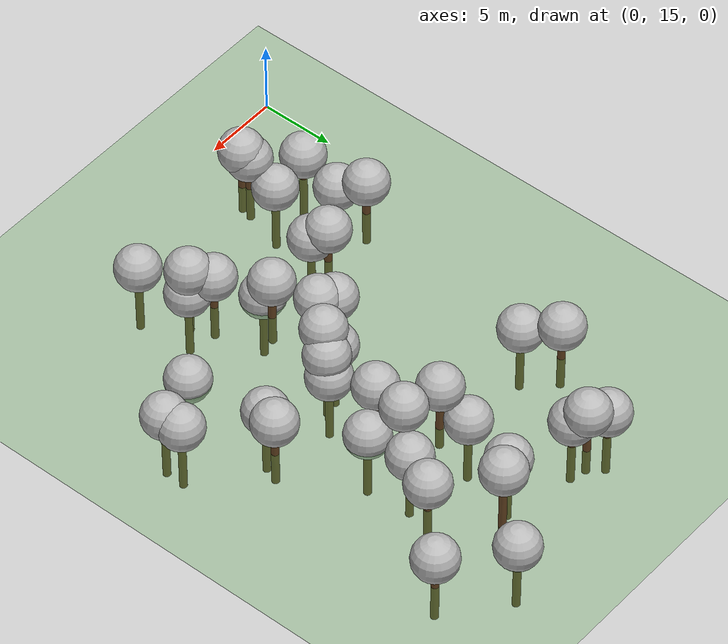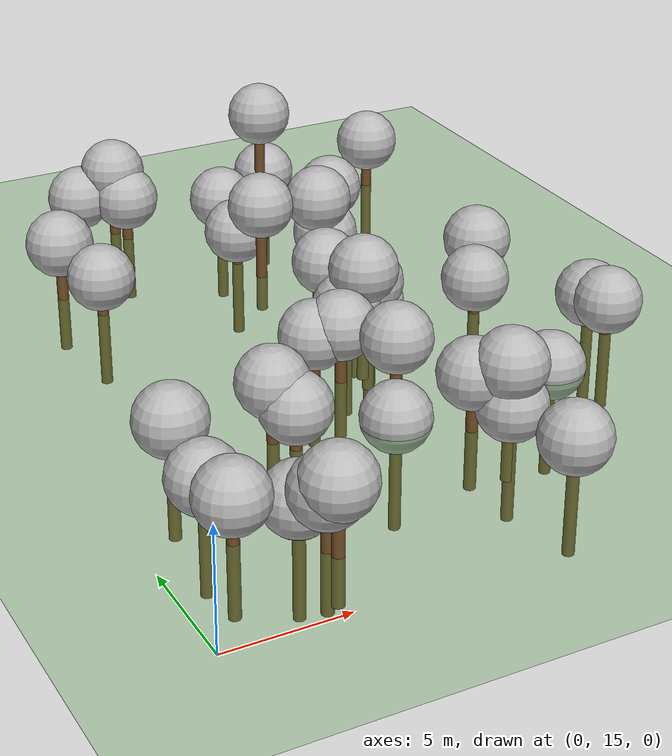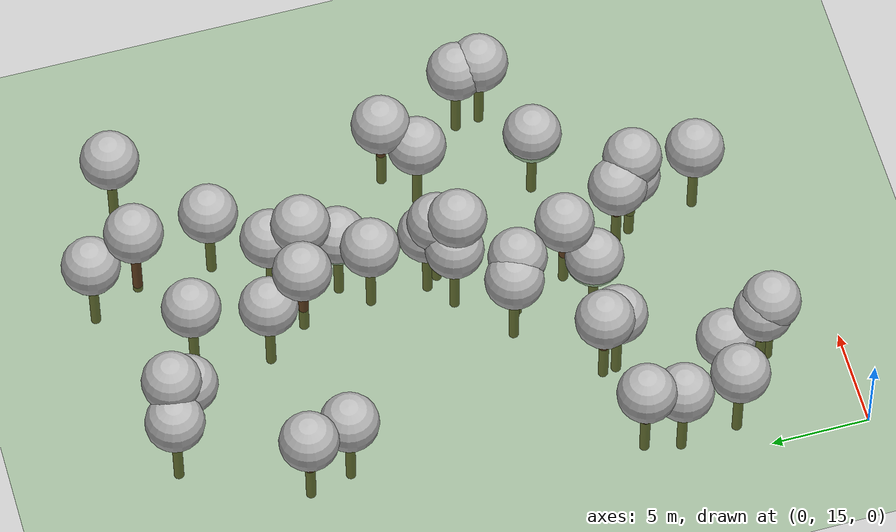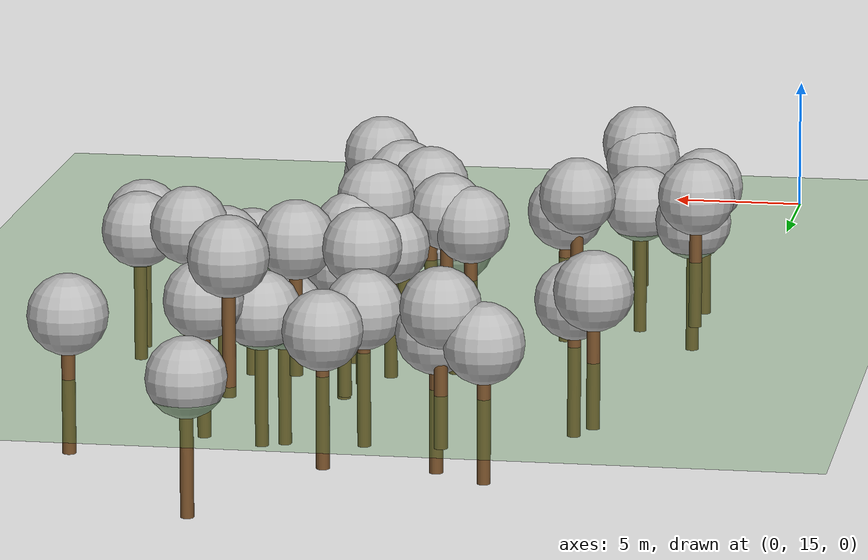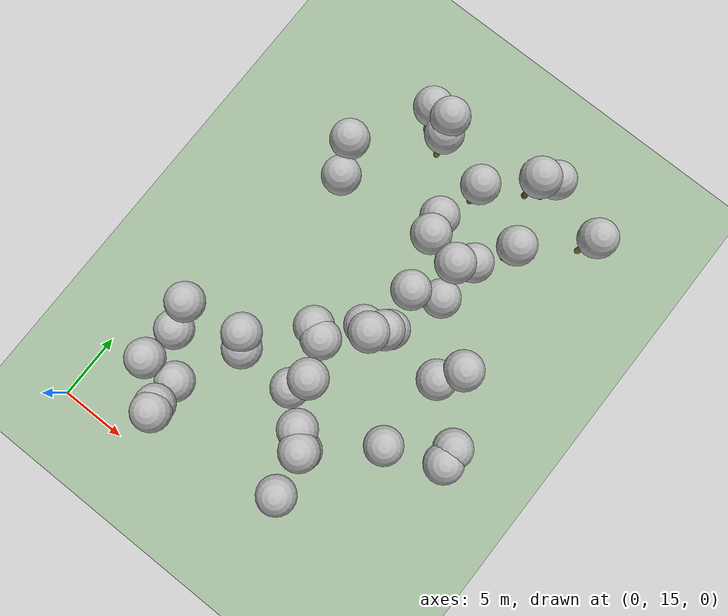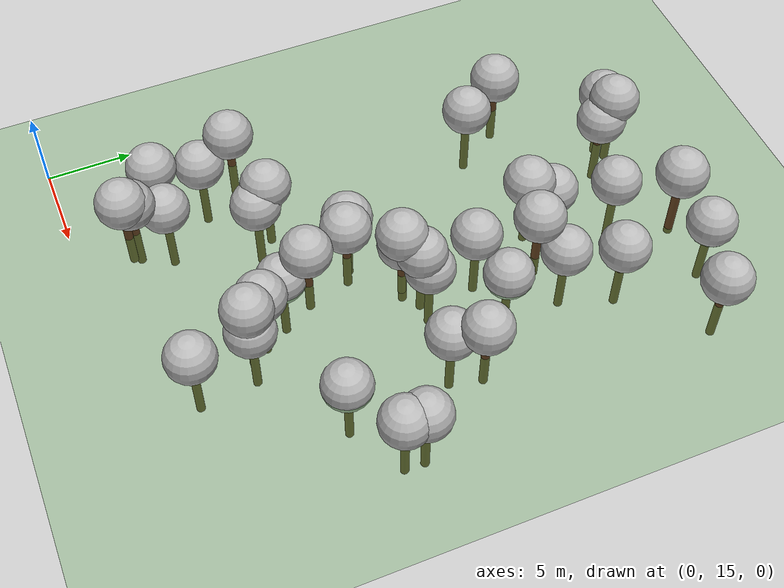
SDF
<sdf version="1.7">
 <world name="default">
  <model name="tree_simple497">
   <static>1</static>
   <link name="link">
    <pose>0 0 0.1 0 -0 0</pose>
    <collision name="collision_trunk">
     <pose>0 0 2 0 -0 0</pose>
     <geometry><cylinder><radius>0.25</radius><length>4</length></cylinder></geometry>
    </collision>
    <collision name="collision_treetop">
     <pose>0 0 5.2 0 -0 0</pose>
     <geometry><sphere><radius>1.5</radius></sphere></geometry>
    </collision>
    <visual name="trunk">
     <pose>0 0 2 0 -0 0</pose>
     <geometry><cylinder><radius>0.25</radius><length>4</length></cylinder></geometry>
     <material>
      <script>
       <uri>model://tree_simple/scripts</uri>
       <uri>model://tree_simple/materials/textures</uri>
       <name>TreeSimple/Trunk</name>
      </script>
     </material>
    </visual>
    <visual name="treetop">
     <pose>0 0 5.2 0 -0 0</pose>
     <geometry><sphere><radius>1.5</radius></sphere></geometry>
     <material>
      <script>
       <uri>model://tree_simple/scripts</uri>
       <uri>model://tree_simple/materials/textures</uri>
       <name>TreeSimple/Treetop</name>
      </script>
     </material>
    </visual>
   </link>
   <pose>16.5731 19.0017 -3.75156 0 -0 0</pose>
  </model>
  <model name="tree_simple465">
   <static>1</static>
   <link name="link">
    <pose>0 0 0.1 0 -0 0</pose>
    <collision name="collision_trunk">
     <pose>0 0 2 0 -0 0</pose>
     <geometry><cylinder><radius>0.25</radius><length>4</length></cylinder></geometry>
    </collision>
    <collision name="collision_treetop">
     <pose>0 0 5.2 0 -0 0</pose>
     <geometry><sphere><radius>1.5</radius></sphere></geometry>
    </collision>
    <visual name="trunk">
     <pose>0 0 2 0 -0 0</pose>
     <geometry><cylinder><radius>0.25</radius><length>4</length></cylinder></geometry>
     <material>
      <script>
       <uri>model://tree_simple/scripts</uri>
       <uri>model://tree_simple/materials/textures</uri>
       <name>TreeSimple/Trunk</name>
      </script>
     </material>
    </visual>
    <visual name="treetop">
     <pose>0 0 5.2 0 -0 0</pose>
     <geometry><sphere><radius>1.5</radius></sphere></geometry>
     <material>
      <script>
       <uri>model://tree_simple/scripts</uri>
       <uri>model://tree_simple/materials/textures</uri>
       <name>TreeSimple/Treetop</name>
      </script>
     </material>
    </visual>
   </link>
   <pose>5.78709 20.6383 -4.22115 0 -0 0</pose>
  </model>
  <model name="tree_simple459">
   <static>1</static>
   <link name="link">
    <pose>0 0 0.1 0 -0 0</pose>
    <collision name="collision_trunk">
     <pose>0 0 2 0 -0 0</pose>
     <geometry><cylinder><radius>0.25</radius><length>4</length></cylinder></geometry>
    </collision>
    <collision name="collision_treetop">
     <pose>0 0 5.2 0 -0 0</pose>
     <geometry><sphere><radius>1.5</radius></sphere></geometry>
    </collision>
    <visual name="trunk">
     <pose>0 0 2 0 -0 0</pose>
     <geometry><cylinder><radius>0.25</radius><length>4</length></cylinder></geometry>
     <material>
      <script>
       <uri>model://tree_simple/scripts</uri>
       <uri>model://tree_simple/materials/textures</uri>
       <name>TreeSimple/Trunk</name>
      </script>
     </material>
    </visual>
    <visual name="treetop">
     <pose>0 0 5.2 0 -0 0</pose>
     <geometry><sphere><radius>1.5</radius></sphere></geometry>
     <material>
      <script>
       <uri>model://tree_simple/scripts</uri>
       <uri>model://tree_simple/materials/textures</uri>
       <name>TreeSimple/Treetop</name>
      </script>
     </material>
    </visual>
   </link>
   <pose>23.3051 47.6025 -2.93132 0 -0 0</pose>
  </model>
  <model name="tree_simple457">
   <static>1</static>
   <link name="link">
    <pose>0 0 0.1 0 -0 0</pose>
    <collision name="collision_trunk">
     <pose>0 0 2 0 -0 0</pose>
     <geometry><cylinder><radius>0.25</radius><length>4</length></cylinder></geometry>
    </collision>
    <collision name="collision_treetop">
     <pose>0 0 5.2 0 -0 0</pose>
     <geometry><sphere><radius>1.5</radius></sphere></geometry>
    </collision>
    <visual name="trunk">
     <pose>0 0 2 0 -0 0</pose>
     <geometry><cylinder><radius>0.25</radius><length>4</length></cylinder></geometry>
     <material>
      <script>
       <uri>model://tree_simple/scripts</uri>
       <uri>model://tree_simple/materials/textures</uri>
       <name>TreeSimple/Trunk</name>
      </script>
     </material>
    </visual>
    <visual name="treetop">
     <pose>0 0 5.2 0 -0 0</pose>
     <geometry><sphere><radius>1.5</radius></sphere></geometry>
     <material>
      <script>
       <uri>model://tree_simple/scripts</uri>
       <uri>model://tree_simple/materials/textures</uri>
       <name>TreeSimple/Treetop</name>
      </script>
     </material>
    </visual>
   </link>
   <pose>13.2866 26.7985 -2.34496 0 -0 0</pose>
  </model>
  <model name="tree_simple452">
   <static>1</static>
   <link name="link">
    <pose>0 0 0.1 0 -0 0</pose>
    <collision name="collision_trunk">
     <pose>0 0 2 0 -0 0</pose>
     <geometry><cylinder><radius>0.25</radius><length>4</length></cylinder></geometry>
    </collision>
    <collision name="collision_treetop">
     <pose>0 0 5.2 0 -0 0</pose>
     <geometry><sphere><radius>1.5</radius></sphere></geometry>
    </collision>
    <visual name="trunk">
     <pose>0 0 2 0 -0 0</pose>
     <geometry><cylinder><radius>0.25</radius><length>4</length></cylinder></geometry>
     <material>
      <script>
       <uri>model://tree_simple/scripts</uri>
       <uri>model://tree_simple/materials/textures</uri>
       <name>TreeSimple/Trunk</name>
      </script>
     </material>
    </visual>
    <visual name="treetop">
     <pose>0 0 5.2 0 -0 0</pose>
     <geometry><sphere><radius>1.5</radius></sphere></geometry>
     <material>
      <script>
       <uri>model://tree_simple/scripts</uri>
       <uri>model://tree_simple/materials/textures</uri>
       <name>TreeSimple/Treetop</name>
      </script>
     </material>
    </visual>
   </link>
   <pose>21.4882 34.0286 -2.62857 0 -0 0</pose>
  </model>
  <model name="tree_simple450">
   <static>1</static>
   <link name="link">
    <pose>0 0 0.1 0 -0 0</pose>
    <collision name="collision_trunk">
     <pose>0 0 2 0 -0 0</pose>
     <geometry><cylinder><radius>0.25</radius><length>4</length></cylinder></geometry>
    </collision>
    <collision name="collision_treetop">
     <pose>0 0 5.2 0 -0 0</pose>
     <geometry><sphere><radius>1.5</radius></sphere></geometry>
    </collision>
    <visual name="trunk">
     <pose>0 0 2 0 -0 0</pose>
     <geometry><cylinder><radius>0.25</radius><length>4</length></cylinder></geometry>
     <material>
      <script>
       <uri>model://tree_simple/scripts</uri>
       <uri>model://tree_simple/materials/textures</uri>
       <name>TreeSimple/Trunk</name>
      </script>
     </material>
    </visual>
    <visual name="treetop">
     <pose>0 0 5.2 0 -0 0</pose>
     <geometry><sphere><radius>1.5</radius></sphere></geometry>
     <material>
      <script>
       <uri>model://tree_simple/scripts</uri>
       <uri>model://tree_simple/materials/textures</uri>
       <name>TreeSimple/Treetop</name>
      </script>
     </material>
    </visual>
   </link>
   <pose>16.0273 22.5149 -3.99483 0 -0 0</pose>
  </model>
  <model name="tree_simple445">
   <static>1</static>
   <link name="link">
    <pose>0 0 0.1 0 -0 0</pose>
    <collision name="collision_trunk">
     <pose>0 0 2 0 -0 0</pose>
     <geometry><cylinder><radius>0.25</radius><length>4</length></cylinder></geometry>
    </collision>
    <collision name="collision_treetop">
     <pose>0 0 5.2 0 -0 0</pose>
     <geometry><sphere><radius>1.5</radius></sphere></geometry>
    </collision>
    <visual name="trunk">
     <pose>0 0 2 0 -0 0</pose>
     <geometry><cylinder><radius>0.25</radius><length>4</length></cylinder></geometry>
     <material>
      <script>
       <uri>model://tree_simple/scripts</uri>
       <uri>model://tree_simple/materials/textures</uri>
       <name>TreeSimple/Trunk</name>
      </script>
     </material>
    </visual>
    <visual name="treetop">
     <pose>0 0 5.2 0 -0 0</pose>
     <geometry><sphere><radius>1.5</radius></sphere></geometry>
     <material>
      <script>
       <uri>model://tree_simple/scripts</uri>
       <uri>model://tree_simple/materials/textures</uri>
       <name>TreeSimple/Treetop</name>
      </script>
     </material>
    </visual>
   </link>
   <pose>17.3331 47.7478 -0.525276 0 -0 0</pose>
  </model>
  <model name="tree_simple443">
   <static>1</static>
   <link name="link">
    <pose>0 0 0.1 0 -0 0</pose>
    <collision name="collision_trunk">
     <pose>0 0 2 0 -0 0</pose>
     <geometry><cylinder><radius>0.25</radius><length>4</length></cylinder></geometry>
    </collision>
    <collision name="collision_treetop">
     <pose>0 0 5.2 0 -0 0</pose>
     <geometry><sphere><radius>1.5</radius></sphere></geometry>
    </collision>
    <visual name="trunk">
     <pose>0 0 2 0 -0 0</pose>
     <geometry><cylinder><radius>0.25</radius><length>4</length></cylinder></geometry>
     <material>
      <script>
       <uri>model://tree_simple/scripts</uri>
       <uri>model://tree_simple/materials/textures</uri>
       <name>TreeSimple/Trunk</name>
      </script>
     </material>
    </visual>
    <visual name="treetop">
     <pose>0 0 5.2 0 -0 0</pose>
     <geometry><sphere><radius>1.5</radius></sphere></geometry>
     <material>
      <script>
       <uri>model://tree_simple/scripts</uri>
       <uri>model://tree_simple/materials/textures</uri>
       <name>TreeSimple/Treetop</name>
      </script>
     </material>
    </visual>
   </link>
   <pose>20.4518 32.4373 -3.69726 0 -0 0</pose>
  </model>
  <model name="tree_simple419">
   <static>1</static>
   <link name="link">
    <pose>0 0 0.1 0 -0 0</pose>
    <collision name="collision_trunk">
     <pose>0 0 2 0 -0 0</pose>
     <geometry><cylinder><radius>0.25</radius><length>4</length></cylinder></geometry>
    </collision>
    <collision name="collision_treetop">
     <pose>0 0 5.2 0 -0 0</pose>
     <geometry><sphere><radius>1.5</radius></sphere></geometry>
    </collision>
    <visual name="trunk">
     <pose>0 0 2 0 -0 0</pose>
     <geometry><cylinder><radius>0.25</radius><length>4</length></cylinder></geometry>
     <material>
      <script>
       <uri>model://tree_simple/scripts</uri>
       <uri>model://tree_simple/materials/textures</uri>
       <name>TreeSimple/Trunk</name>
      </script>
     </material>
    </visual>
    <visual name="treetop">
     <pose>0 0 5.2 0 -0 0</pose>
     <geometry><sphere><radius>1.5</radius></sphere></geometry>
     <material>
      <script>
       <uri>model://tree_simple/scripts</uri>
       <uri>model://tree_simple/materials/textures</uri>
       <name>TreeSimple/Treetop</name>
      </script>
     </material>
    </visual>
   </link>
   <pose>15.0608 36.3391 -3.30764 0 -0 0</pose>
  </model>
  <model name="tree_simple413">
   <static>1</static>
   <link name="link">
    <pose>0 0 0.1 0 -0 0</pose>
    <collision name="collision_trunk">
     <pose>0 0 2 0 -0 0</pose>
     <geometry><cylinder><radius>0.25</radius><length>4</length></cylinder></geometry>
    </collision>
    <collision name="collision_treetop">
     <pose>0 0 5.2 0 -0 0</pose>
     <geometry><sphere><radius>1.5</radius></sphere></geometry>
    </collision>
    <visual name="trunk">
     <pose>0 0 2 0 -0 0</pose>
     <geometry><cylinder><radius>0.25</radius><length>4</length></cylinder></geometry>
     <material>
      <script>
       <uri>model://tree_simple/scripts</uri>
       <uri>model://tree_simple/materials/textures</uri>
       <name>TreeSimple/Trunk</name>
      </script>
     </material>
    </visual>
    <visual name="treetop">
     <pose>0 0 5.2 0 -0 0</pose>
     <geometry><sphere><radius>1.5</radius></sphere></geometry>
     <material>
      <script>
       <uri>model://tree_simple/scripts</uri>
       <uri>model://tree_simple/materials/textures</uri>
       <name>TreeSimple/Treetop</name>
      </script>
     </material>
    </visual>
   </link>
   <pose>4.79773 42.1908 -2.64874 0 -0 0</pose>
  </model>
  <model name="tree_simple405">
   <static>1</static>
   <link name="link">
    <pose>0 0 0.1 0 -0 0</pose>
    <collision name="collision_trunk">
     <pose>0 0 2 0 -0 0</pose>
     <geometry><cylinder><radius>0.25</radius><length>4</length></cylinder></geometry>
    </collision>
    <collision name="collision_treetop">
     <pose>0 0 5.2 0 -0 0</pose>
     <geometry><sphere><radius>1.5</radius></sphere></geometry>
    </collision>
    <visual name="trunk">
     <pose>0 0 2 0 -0 0</pose>
     <geometry><cylinder><radius>0.25</radius><length>4</length></cylinder></geometry>
     <material>
      <script>
       <uri>model://tree_simple/scripts</uri>
       <uri>model://tree_simple/materials/textures</uri>
       <name>TreeSimple/Trunk</name>
      </script>
     </material>
    </visual>
    <visual name="treetop">
     <pose>0 0 5.2 0 -0 0</pose>
     <geometry><sphere><radius>1.5</radius></sphere></geometry>
     <material>
      <script>
       <uri>model://tree_simple/scripts</uri>
       <uri>model://tree_simple/materials/textures</uri>
       <name>TreeSimple/Treetop</name>
      </script>
     </material>
    </visual>
   </link>
   <pose>13.9641 32.2793 -3.53536 0 -0 0</pose>
  </model>
  <model name="tree_simple401">
   <static>1</static>
   <link name="link">
    <pose>0 0 0.1 0 -0 0</pose>
    <collision name="collision_trunk">
     <pose>0 0 2 0 -0 0</pose>
     <geometry><cylinder><radius>0.25</radius><length>4</length></cylinder></geometry>
    </collision>
    <collision name="collision_treetop">
     <pose>0 0 5.2 0 -0 0</pose>
     <geometry><sphere><radius>1.5</radius></sphere></geometry>
    </collision>
    <visual name="trunk">
     <pose>0 0 2 0 -0 0</pose>
     <geometry><cylinder><radius>0.25</radius><length>4</length></cylinder></geometry>
     <material>
      <script>
       <uri>model://tree_simple/scripts</uri>
       <uri>model://tree_simple/materials/textures</uri>
       <name>TreeSimple/Trunk</name>
      </script>
     </material>
    </visual>
    <visual name="treetop">
     <pose>0 0 5.2 0 -0 0</pose>
     <geometry><sphere><radius>1.5</radius></sphere></geometry>
     <material>
      <script>
       <uri>model://tree_simple/scripts</uri>
       <uri>model://tree_simple/materials/textures</uri>
       <name>TreeSimple/Treetop</name>
      </script>
     </material>
    </visual>
   </link>
   <pose>18.512 49.83 -4.53536 0 -0 0</pose>
  </model>
  <model name="tree_simple381">
   <static>1</static>
   <link name="link">
    <pose>0 0 0.1 0 -0 0</pose>
    <collision name="collision_trunk">
     <pose>0 0 2 0 -0 0</pose>
     <geometry><cylinder><radius>0.25</radius><length>4</length></cylinder></geometry>
    </collision>
    <collision name="collision_treetop">
     <pose>0 0 5.2 0 -0 0</pose>
     <geometry><sphere><radius>1.5</radius></sphere></geometry>
    </collision>
    <visual name="trunk">
     <pose>0 0 2 0 -0 0</pose>
     <geometry><cylinder><radius>0.25</radius><length>4</length></cylinder></geometry>
     <material>
      <script>
       <uri>model://tree_simple/scripts</uri>
       <uri>model://tree_simple/materials/textures</uri>
       <name>TreeSimple/Trunk</name>
      </script>
     </material>
    </visual>
    <visual name="treetop">
     <pose>0 0 5.2 0 -0 0</pose>
     <geometry><sphere><radius>1.5</radius></sphere></geometry>
     <material>
      <script>
       <uri>model://tree_simple/scripts</uri>
       <uri>model://tree_simple/materials/textures</uri>
       <name>TreeSimple/Treetop</name>
      </script>
     </material>
    </visual>
   </link>
   <pose>14.5985 31.961 -1.77604 0 -0 0</pose>
  </model>
  <model name="tree_simple372">
   <static>1</static>
   <link name="link">
    <pose>0 0 0.1 0 -0 0</pose>
    <collision name="collision_trunk">
     <pose>0 0 2 0 -0 0</pose>
     <geometry><cylinder><radius>0.25</radius><length>4</length></cylinder></geometry>
    </collision>
    <collision name="collision_treetop">
     <pose>0 0 5.2 0 -0 0</pose>
     <geometry><sphere><radius>1.5</radius></sphere></geometry>
    </collision>
    <visual name="trunk">
     <pose>0 0 2 0 -0 0</pose>
     <geometry><cylinder><radius>0.25</radius><length>4</length></cylinder></geometry>
     <material>
      <script>
       <uri>model://tree_simple/scripts</uri>
       <uri>model://tree_simple/materials/textures</uri>
       <name>TreeSimple/Trunk</name>
      </script>
     </material>
    </visual>
    <visual name="treetop">
     <pose>0 0 5.2 0 -0 0</pose>
     <geometry><sphere><radius>1.5</radius></sphere></geometry>
     <material>
      <script>
       <uri>model://tree_simple/scripts</uri>
       <uri>model://tree_simple/materials/textures</uri>
       <name>TreeSimple/Treetop</name>
      </script>
     </material>
    </visual>
   </link>
   <pose>19.0807 43.6052 -3.17355 0 -0 0</pose>
  </model>
  <model name="tree_simple367">
   <static>1</static>
   <link name="link">
    <pose>0 0 0.1 0 -0 0</pose>
    <collision name="collision_trunk">
     <pose>0 0 2 0 -0 0</pose>
     <geometry><cylinder><radius>0.25</radius><length>4</length></cylinder></geometry>
    </collision>
    <collision name="collision_treetop">
     <pose>0 0 5.2 0 -0 0</pose>
     <geometry><sphere><radius>1.5</radius></sphere></geometry>
    </collision>
    <visual name="trunk">
     <pose>0 0 2 0 -0 0</pose>
     <geometry><cylinder><radius>0.25</radius><length>4</length></cylinder></geometry>
     <material>
      <script>
       <uri>model://tree_simple/scripts</uri>
       <uri>model://tree_simple/materials/textures</uri>
       <name>TreeSimple/Trunk</name>
      </script>
     </material>
    </visual>
    <visual name="treetop">
     <pose>0 0 5.2 0 -0 0</pose>
     <geometry><sphere><radius>1.5</radius></sphere></geometry>
     <material>
      <script>
       <uri>model://tree_simple/scripts</uri>
       <uri>model://tree_simple/materials/textures</uri>
       <name>TreeSimple/Treetop</name>
      </script>
     </material>
    </visual>
   </link>
   <pose>14.2659 45.718 -3.63093 0 -0 0</pose>
  </model>
  <model name="tree_simple365">
   <static>1</static>
   <link name="link">
    <pose>0 0 0.1 0 -0 0</pose>
    <collision name="collision_trunk">
     <pose>0 0 2 0 -0 0</pose>
     <geometry><cylinder><radius>0.25</radius><length>4</length></cylinder></geometry>
    </collision>
    <collision name="collision_treetop">
     <pose>0 0 5.2 0 -0 0</pose>
     <geometry><sphere><radius>1.5</radius></sphere></geometry>
    </collision>
    <visual name="trunk">
     <pose>0 0 2 0 -0 0</pose>
     <geometry><cylinder><radius>0.25</radius><length>4</length></cylinder></geometry>
     <material>
      <script>
       <uri>model://tree_simple/scripts</uri>
       <uri>model://tree_simple/materials/textures</uri>
       <name>TreeSimple/Trunk</name>
      </script>
     </material>
    </visual>
    <visual name="treetop">
     <pose>0 0 5.2 0 -0 0</pose>
     <geometry><sphere><radius>1.5</radius></sphere></geometry>
     <material>
      <script>
       <uri>model://tree_simple/scripts</uri>
       <uri>model://tree_simple/materials/textures</uri>
       <name>TreeSimple/Treetop</name>
      </script>
     </material>
    </visual>
   </link>
   <pose>7.96669 48.1339 -3.28923 0 -0 0</pose>
  </model>
  <model name="tree_simple340">
   <static>1</static>
   <link name="link">
    <pose>0 0 0.1 0 -0 0</pose>
    <collision name="collision_trunk">
     <pose>0 0 2 0 -0 0</pose>
     <geometry><cylinder><radius>0.25</radius><length>4</length></cylinder></geometry>
    </collision>
    <collision name="collision_treetop">
     <pose>0 0 5.2 0 -0 0</pose>
     <geometry><sphere><radius>1.5</radius></sphere></geometry>
    </collision>
    <visual name="trunk">
     <pose>0 0 2 0 -0 0</pose>
     <geometry><cylinder><radius>0.25</radius><length>4</length></cylinder></geometry>
     <material>
      <script>
       <uri>model://tree_simple/scripts</uri>
       <uri>model://tree_simple/materials/textures</uri>
       <name>TreeSimple/Trunk</name>
      </script>
     </material>
    </visual>
    <visual name="treetop">
     <pose>0 0 5.2 0 -0 0</pose>
     <geometry><sphere><radius>1.5</radius></sphere></geometry>
     <material>
      <script>
       <uri>model://tree_simple/scripts</uri>
       <uri>model://tree_simple/materials/textures</uri>
       <name>TreeSimple/Treetop</name>
      </script>
     </material>
    </visual>
   </link>
   <pose>15.6359 33.2416 -4.20801 0 -0 0</pose>
  </model>
  <model name="tree_simple339">
   <static>1</static>
   <link name="link">
    <pose>0 0 0.1 0 -0 0</pose>
    <collision name="collision_trunk">
     <pose>0 0 2 0 -0 0</pose>
     <geometry><cylinder><radius>0.25</radius><length>4</length></cylinder></geometry>
    </collision>
    <collision name="collision_treetop">
     <pose>0 0 5.2 0 -0 0</pose>
     <geometry><sphere><radius>1.5</radius></sphere></geometry>
    </collision>
    <visual name="trunk">
     <pose>0 0 2 0 -0 0</pose>
     <geometry><cylinder><radius>0.25</radius><length>4</length></cylinder></geometry>
     <material>
      <script>
       <uri>model://tree_simple/scripts</uri>
       <uri>model://tree_simple/materials/textures</uri>
       <name>TreeSimple/Trunk</name>
      </script>
     </material>
    </visual>
    <visual name="treetop">
     <pose>0 0 5.2 0 -0 0</pose>
     <geometry><sphere><radius>1.5</radius></sphere></geometry>
     <material>
      <script>
       <uri>model://tree_simple/scripts</uri>
       <uri>model://tree_simple/materials/textures</uri>
       <name>TreeSimple/Treetop</name>
      </script>
     </material>
    </visual>
   </link>
   <pose>8.14194 25.5167 -3.52657 0 -0 0</pose>
  </model>
  <model name="tree_simple328">
   <static>1</static>
   <link name="link">
    <pose>0 0 0.1 0 -0 0</pose>
    <collision name="collision_trunk">
     <pose>0 0 2 0 -0 0</pose>
     <geometry><cylinder><radius>0.25</radius><length>4</length></cylinder></geometry>
    </collision>
    <collision name="collision_treetop">
     <pose>0 0 5.2 0 -0 0</pose>
     <geometry><sphere><radius>1.5</radius></sphere></geometry>
    </collision>
    <visual name="trunk">
     <pose>0 0 2 0 -0 0</pose>
     <geometry><cylinder><radius>0.25</radius><length>4</length></cylinder></geometry>
     <material>
      <script>
       <uri>model://tree_simple/scripts</uri>
       <uri>model://tree_simple/materials/textures</uri>
       <name>TreeSimple/Trunk</name>
      </script>
     </material>
    </visual>
    <visual name="treetop">
     <pose>0 0 5.2 0 -0 0</pose>
     <geometry><sphere><radius>1.5</radius></sphere></geometry>
     <material>
      <script>
       <uri>model://tree_simple/scripts</uri>
       <uri>model://tree_simple/materials/textures</uri>
       <name>TreeSimple/Treetop</name>
      </script>
     </material>
    </visual>
   </link>
   <pose>3.34574 23.5188 -4.18577 0 -0 0</pose>
  </model>
  <model name="tree_simple325">
   <static>1</static>
   <link name="link">
    <pose>0 0 0.1 0 -0 0</pose>
    <collision name="collision_trunk">
     <pose>0 0 2 0 -0 0</pose>
     <geometry><cylinder><radius>0.25</radius><length>4</length></cylinder></geometry>
    </collision>
    <collision name="collision_treetop">
     <pose>0 0 5.2 0 -0 0</pose>
     <geometry><sphere><radius>1.5</radius></sphere></geometry>
    </collision>
    <visual name="trunk">
     <pose>0 0 2 0 -0 0</pose>
     <geometry><cylinder><radius>0.25</radius><length>4</length></cylinder></geometry>
     <material>
      <script>
       <uri>model://tree_simple/scripts</uri>
       <uri>model://tree_simple/materials/textures</uri>
       <name>TreeSimple/Trunk</name>
      </script>
     </material>
    </visual>
    <visual name="treetop">
     <pose>0 0 5.2 0 -0 0</pose>
     <geometry><sphere><radius>1.5</radius></sphere></geometry>
     <material>
      <script>
       <uri>model://tree_simple/scripts</uri>
       <uri>model://tree_simple/materials/textures</uri>
       <name>TreeSimple/Treetop</name>
      </script>
     </material>
    </visual>
   </link>
   <pose>16.3513 39.5354 -1.74613 0 -0 0</pose>
  </model>
  <model name="tree_simple320">
   <static>1</static>
   <link name="link">
    <pose>0 0 0.1 0 -0 0</pose>
    <collision name="collision_trunk">
     <pose>0 0 2 0 -0 0</pose>
     <geometry><cylinder><radius>0.25</radius><length>4</length></cylinder></geometry>
    </collision>
    <collision name="collision_treetop">
     <pose>0 0 5.2 0 -0 0</pose>
     <geometry><sphere><radius>1.5</radius></sphere></geometry>
    </collision>
    <visual name="trunk">
     <pose>0 0 2 0 -0 0</pose>
     <geometry><cylinder><radius>0.25</radius><length>4</length></cylinder></geometry>
     <material>
      <script>
       <uri>model://tree_simple/scripts</uri>
       <uri>model://tree_simple/materials/textures</uri>
       <name>TreeSimple/Trunk</name>
      </script>
     </material>
    </visual>
    <visual name="treetop">
     <pose>0 0 5.2 0 -0 0</pose>
     <geometry><sphere><radius>1.5</radius></sphere></geometry>
     <material>
      <script>
       <uri>model://tree_simple/scripts</uri>
       <uri>model://tree_simple/materials/textures</uri>
       <name>TreeSimple/Treetop</name>
      </script>
     </material>
    </visual>
   </link>
   <pose>17.4268 40.9028 -4.15265 0 -0 0</pose>
  </model>
  <model name="tree_simple295">
   <static>1</static>
   <link name="link">
    <pose>0 0 0.1 0 -0 0</pose>
    <collision name="collision_trunk">
     <pose>0 0 2 0 -0 0</pose>
     <geometry><cylinder><radius>0.25</radius><length>4</length></cylinder></geometry>
    </collision>
    <collision name="collision_treetop">
     <pose>0 0 5.2 0 -0 0</pose>
     <geometry><sphere><radius>1.5</radius></sphere></geometry>
    </collision>
    <visual name="trunk">
     <pose>0 0 2 0 -0 0</pose>
     <geometry><cylinder><radius>0.25</radius><length>4</length></cylinder></geometry>
     <material>
      <script>
       <uri>model://tree_simple/scripts</uri>
       <uri>model://tree_simple/materials/textures</uri>
       <name>TreeSimple/Trunk</name>
      </script>
     </material>
    </visual>
    <visual name="treetop">
     <pose>0 0 5.2 0 -0 0</pose>
     <geometry><sphere><radius>1.5</radius></sphere></geometry>
     <material>
      <script>
       <uri>model://tree_simple/scripts</uri>
       <uri>model://tree_simple/materials/textures</uri>
       <name>TreeSimple/Treetop</name>
      </script>
     </material>
    </visual>
   </link>
   <pose>24.4546 28.0658 -3.77273 0 -0 0</pose>
  </model>
  <model name="tree_simple287">
   <static>1</static>
   <link name="link">
    <pose>0 0 0.1 0 -0 0</pose>
    <collision name="collision_trunk">
     <pose>0 0 2 0 -0 0</pose>
     <geometry><cylinder><radius>0.25</radius><length>4</length></cylinder></geometry>
    </collision>
    <collision name="collision_treetop">
     <pose>0 0 5.2 0 -0 0</pose>
     <geometry><sphere><radius>1.5</radius></sphere></geometry>
    </collision>
    <visual name="trunk">
     <pose>0 0 2 0 -0 0</pose>
     <geometry><cylinder><radius>0.25</radius><length>4</length></cylinder></geometry>
     <material>
      <script>
       <uri>model://tree_simple/scripts</uri>
       <uri>model://tree_simple/materials/textures</uri>
       <name>TreeSimple/Trunk</name>
      </script>
     </material>
    </visual>
    <visual name="treetop">
     <pose>0 0 5.2 0 -0 0</pose>
     <geometry><sphere><radius>1.5</radius></sphere></geometry>
     <material>
      <script>
       <uri>model://tree_simple/scripts</uri>
       <uri>model://tree_simple/materials/textures</uri>
       <name>TreeSimple/Treetop</name>
      </script>
     </material>
    </visual>
   </link>
   <pose>5.8196 39.8954 -3.57027 0 -0 0</pose>
  </model>
  <model name="tree_simple275">
   <static>1</static>
   <link name="link">
    <pose>0 0 0.1 0 -0 0</pose>
    <collision name="collision_trunk">
     <pose>0 0 2 0 -0 0</pose>
     <geometry><cylinder><radius>0.25</radius><length>4</length></cylinder></geometry>
    </collision>
    <collision name="collision_treetop">
     <pose>0 0 5.2 0 -0 0</pose>
     <geometry><sphere><radius>1.5</radius></sphere></geometry>
    </collision>
    <visual name="trunk">
     <pose>0 0 2 0 -0 0</pose>
     <geometry><cylinder><radius>0.25</radius><length>4</length></cylinder></geometry>
     <material>
      <script>
       <uri>model://tree_simple/scripts</uri>
       <uri>model://tree_simple/materials/textures</uri>
       <name>TreeSimple/Trunk</name>
      </script>
     </material>
    </visual>
    <visual name="treetop">
     <pose>0 0 5.2 0 -0 0</pose>
     <geometry><sphere><radius>1.5</radius></sphere></geometry>
     <material>
      <script>
       <uri>model://tree_simple/scripts</uri>
       <uri>model://tree_simple/materials/textures</uri>
       <name>TreeSimple/Treetop</name>
      </script>
     </material>
    </visual>
   </link>
   <pose>11.2194 29.963 -3.16021 0 -0 0</pose>
  </model>
  <model name="tree_simple260">
   <static>1</static>
   <link name="link">
    <pose>0 0 0.1 0 -0 0</pose>
    <collision name="collision_trunk">
     <pose>0 0 2 0 -0 0</pose>
     <geometry><cylinder><radius>0.25</radius><length>4</length></cylinder></geometry>
    </collision>
    <collision name="collision_treetop">
     <pose>0 0 5.2 0 -0 0</pose>
     <geometry><sphere><radius>1.5</radius></sphere></geometry>
    </collision>
    <visual name="trunk">
     <pose>0 0 2 0 -0 0</pose>
     <geometry><cylinder><radius>0.25</radius><length>4</length></cylinder></geometry>
     <material>
      <script>
       <uri>model://tree_simple/scripts</uri>
       <uri>model://tree_simple/materials/textures</uri>
       <name>TreeSimple/Trunk</name>
      </script>
     </material>
    </visual>
    <visual name="treetop">
     <pose>0 0 5.2 0 -0 0</pose>
     <geometry><sphere><radius>1.5</radius></sphere></geometry>
     <material>
      <script>
       <uri>model://tree_simple/scripts</uri>
       <uri>model://tree_simple/materials/textures</uri>
       <name>TreeSimple/Treetop</name>
      </script>
     </material>
    </visual>
   </link>
   <pose>20.4747 26.374 -5.1592 0 -0 0</pose>
  </model>
  <model name="tree_simple258">
   <static>1</static>
   <link name="link">
    <pose>0 0 0.1 0 -0 0</pose>
    <collision name="collision_trunk">
     <pose>0 0 2 0 -0 0</pose>
     <geometry><cylinder><radius>0.25</radius><length>4</length></cylinder></geometry>
    </collision>
    <collision name="collision_treetop">
     <pose>0 0 5.2 0 -0 0</pose>
     <geometry><sphere><radius>1.5</radius></sphere></geometry>
    </collision>
    <visual name="trunk">
     <pose>0 0 2 0 -0 0</pose>
     <geometry><cylinder><radius>0.25</radius><length>4</length></cylinder></geometry>
     <material>
      <script>
       <uri>model://tree_simple/scripts</uri>
       <uri>model://tree_simple/materials/textures</uri>
       <name>TreeSimple/Trunk</name>
      </script>
     </material>
    </visual>
    <visual name="treetop">
     <pose>0 0 5.2 0 -0 0</pose>
     <geometry><sphere><radius>1.5</radius></sphere></geometry>
     <material>
      <script>
       <uri>model://tree_simple/scripts</uri>
       <uri>model://tree_simple/materials/textures</uri>
       <name>TreeSimple/Treetop</name>
      </script>
     </material>
    </visual>
   </link>
   <pose>24.3826 29.2966 -3.95923 0 -0 0</pose>
  </model>
  <model name="tree_simple254">
   <static>1</static>
   <link name="link">
    <pose>0 0 0.1 0 -0 0</pose>
    <collision name="collision_trunk">
     <pose>0 0 2 0 -0 0</pose>
     <geometry><cylinder><radius>0.25</radius><length>4</length></cylinder></geometry>
    </collision>
    <collision name="collision_treetop">
     <pose>0 0 5.2 0 -0 0</pose>
     <geometry><sphere><radius>1.5</radius></sphere></geometry>
    </collision>
    <visual name="trunk">
     <pose>0 0 2 0 -0 0</pose>
     <geometry><cylinder><radius>0.25</radius><length>4</length></cylinder></geometry>
     <material>
      <script>
       <uri>model://tree_simple/scripts</uri>
       <uri>model://tree_simple/materials/textures</uri>
       <name>TreeSimple/Trunk</name>
      </script>
     </material>
    </visual>
    <visual name="treetop">
     <pose>0 0 5.2 0 -0 0</pose>
     <geometry><sphere><radius>1.5</radius></sphere></geometry>
     <material>
      <script>
       <uri>model://tree_simple/scripts</uri>
       <uri>model://tree_simple/materials/textures</uri>
       <name>TreeSimple/Treetop</name>
      </script>
     </material>
    </visual>
   </link>
   <pose>13.3684 41.9999 -3.71297 0 -0 0</pose>
  </model>
  <model name="tree_simple229">
   <static>1</static>
   <link name="link">
    <pose>0 0 0.1 0 -0 0</pose>
    <collision name="collision_trunk">
     <pose>0 0 2 0 -0 0</pose>
     <geometry><cylinder><radius>0.25</radius><length>4</length></cylinder></geometry>
    </collision>
    <collision name="collision_treetop">
     <pose>0 0 5.2 0 -0 0</pose>
     <geometry><sphere><radius>1.5</radius></sphere></geometry>
    </collision>
    <visual name="trunk">
     <pose>0 0 2 0 -0 0</pose>
     <geometry><cylinder><radius>0.25</radius><length>4</length></cylinder></geometry>
     <material>
      <script>
       <uri>model://tree_simple/scripts</uri>
       <uri>model://tree_simple/materials/textures</uri>
       <name>TreeSimple/Trunk</name>
      </script>
     </material>
    </visual>
    <visual name="treetop">
     <pose>0 0 5.2 0 -0 0</pose>
     <geometry><sphere><radius>1.5</radius></sphere></geometry>
     <material>
      <script>
       <uri>model://tree_simple/scripts</uri>
       <uri>model://tree_simple/materials/textures</uri>
       <name>TreeSimple/Treetop</name>
      </script>
     </material>
    </visual>
   </link>
   <pose>17.1704 37.4765 -4.96696 0 -0 0</pose>
  </model>
  <model name="tree_simple196">
   <static>1</static>
   <link name="link">
    <pose>0 0 0.1 0 -0 0</pose>
    <collision name="collision_trunk">
     <pose>0 0 2 0 -0 0</pose>
     <geometry><cylinder><radius>0.25</radius><length>4</length></cylinder></geometry>
    </collision>
    <collision name="collision_treetop">
     <pose>0 0 5.2 0 -0 0</pose>
     <geometry><sphere><radius>1.5</radius></sphere></geometry>
    </collision>
    <visual name="trunk">
     <pose>0 0 2 0 -0 0</pose>
     <geometry><cylinder><radius>0.25</radius><length>4</length></cylinder></geometry>
     <material>
      <script>
       <uri>model://tree_simple/scripts</uri>
       <uri>model://tree_simple/materials/textures</uri>
       <name>TreeSimple/Trunk</name>
      </script>
     </material>
    </visual>
    <visual name="treetop">
     <pose>0 0 5.2 0 -0 0</pose>
     <geometry><sphere><radius>1.5</radius></sphere></geometry>
     <material>
      <script>
       <uri>model://tree_simple/scripts</uri>
       <uri>model://tree_simple/materials/textures</uri>
       <name>TreeSimple/Treetop</name>
      </script>
     </material>
    </visual>
   </link>
   <pose>13.7422 40.1413 -1.80896 0 -0 0</pose>
  </model>
  <model name="tree_simple189">
   <static>1</static>
   <link name="link">
    <pose>0 0 0.1 0 -0 0</pose>
    <collision name="collision_trunk">
     <pose>0 0 2 0 -0 0</pose>
     <geometry><cylinder><radius>0.25</radius><length>4</length></cylinder></geometry>
    </collision>
    <collision name="collision_treetop">
     <pose>0 0 5.2 0 -0 0</pose>
     <geometry><sphere><radius>1.5</radius></sphere></geometry>
    </collision>
    <visual name="trunk">
     <pose>0 0 2 0 -0 0</pose>
     <geometry><cylinder><radius>0.25</radius><length>4</length></cylinder></geometry>
     <material>
      <script>
       <uri>model://tree_simple/scripts</uri>
       <uri>model://tree_simple/materials/textures</uri>
       <name>TreeSimple/Trunk</name>
      </script>
     </material>
    </visual>
    <visual name="treetop">
     <pose>0 0 5.2 0 -0 0</pose>
     <geometry><sphere><radius>1.5</radius></sphere></geometry>
     <material>
      <script>
       <uri>model://tree_simple/scripts</uri>
       <uri>model://tree_simple/materials/textures</uri>
       <name>TreeSimple/Treetop</name>
      </script>
     </material>
    </visual>
   </link>
   <pose>7.56705 26.3743 -2.68895 0 -0 0</pose>
  </model>
  <model name="tree_simple181">
   <static>1</static>
   <link name="link">
    <pose>0 0 0.1 0 -0 0</pose>
    <collision name="collision_trunk">
     <pose>0 0 2 0 -0 0</pose>
     <geometry><cylinder><radius>0.25</radius><length>4</length></cylinder></geometry>
    </collision>
    <collision name="collision_treetop">
     <pose>0 0 5.2 0 -0 0</pose>
     <geometry><sphere><radius>1.5</radius></sphere></geometry>
    </collision>
    <visual name="trunk">
     <pose>0 0 2 0 -0 0</pose>
     <geometry><cylinder><radius>0.25</radius><length>4</length></cylinder></geometry>
     <material>
      <script>
       <uri>model://tree_simple/scripts</uri>
       <uri>model://tree_simple/materials/textures</uri>
       <name>TreeSimple/Trunk</name>
      </script>
     </material>
    </visual>
    <visual name="treetop">
     <pose>0 0 5.2 0 -0 0</pose>
     <geometry><sphere><radius>1.5</radius></sphere></geometry>
     <material>
      <script>
       <uri>model://tree_simple/scripts</uri>
       <uri>model://tree_simple/materials/textures</uri>
       <name>TreeSimple/Treetop</name>
      </script>
     </material>
    </visual>
   </link>
   <pose>14.8849 23.5675 -2.80999 0 -0 0</pose>
  </model>
  <model name="tree_simple177">
   <static>1</static>
   <link name="link">
    <pose>0 0 0.1 0 -0 0</pose>
    <collision name="collision_trunk">
     <pose>0 0 2 0 -0 0</pose>
     <geometry><cylinder><radius>0.25</radius><length>4</length></cylinder></geometry>
    </collision>
    <collision name="collision_treetop">
     <pose>0 0 5.2 0 -0 0</pose>
     <geometry><sphere><radius>1.5</radius></sphere></geometry>
    </collision>
    <visual name="trunk">
     <pose>0 0 2 0 -0 0</pose>
     <geometry><cylinder><radius>0.25</radius><length>4</length></cylinder></geometry>
     <material>
      <script>
       <uri>model://tree_simple/scripts</uri>
       <uri>model://tree_simple/materials/textures</uri>
       <name>TreeSimple/Trunk</name>
      </script>
     </material>
    </visual>
    <visual name="treetop">
     <pose>0 0 5.2 0 -0 0</pose>
     <geometry><sphere><radius>1.5</radius></sphere></geometry>
     <material>
      <script>
       <uri>model://tree_simple/scripts</uri>
       <uri>model://tree_simple/materials/textures</uri>
       <name>TreeSimple/Treetop</name>
      </script>
     </material>
    </visual>
   </link>
   <pose>5.95473 18.7195 -2.82809 0 -0 0</pose>
  </model>
  <model name="tree_simple170">
   <static>1</static>
   <link name="link">
    <pose>0 0 0.1 0 -0 0</pose>
    <collision name="collision_trunk">
     <pose>0 0 2 0 -0 0</pose>
     <geometry><cylinder><radius>0.25</radius><length>4</length></cylinder></geometry>
    </collision>
    <collision name="collision_treetop">
     <pose>0 0 5.2 0 -0 0</pose>
     <geometry><sphere><radius>1.5</radius></sphere></geometry>
    </collision>
    <visual name="trunk">
     <pose>0 0 2 0 -0 0</pose>
     <geometry><cylinder><radius>0.25</radius><length>4</length></cylinder></geometry>
     <material>
      <script>
       <uri>model://tree_simple/scripts</uri>
       <uri>model://tree_simple/materials/textures</uri>
       <name>TreeSimple/Trunk</name>
      </script>
     </material>
    </visual>
    <visual name="treetop">
     <pose>0 0 5.2 0 -0 0</pose>
     <geometry><sphere><radius>1.5</radius></sphere></geometry>
     <material>
      <script>
       <uri>model://tree_simple/scripts</uri>
       <uri>model://tree_simple/materials/textures</uri>
       <name>TreeSimple/Treetop</name>
      </script>
     </material>
    </visual>
   </link>
   <pose>15.3428 32.8274 -2.87247 0 -0 0</pose>
  </model>
  <model name="tree_simple148">
   <static>1</static>
   <link name="link">
    <pose>0 0 0.1 0 -0 0</pose>
    <collision name="collision_trunk">
     <pose>0 0 2 0 -0 0</pose>
     <geometry><cylinder><radius>0.25</radius><length>4</length></cylinder></geometry>
    </collision>
    <collision name="collision_treetop">
     <pose>0 0 5.2 0 -0 0</pose>
     <geometry><sphere><radius>1.5</radius></sphere></geometry>
    </collision>
    <visual name="trunk">
     <pose>0 0 2 0 -0 0</pose>
     <geometry><cylinder><radius>0.25</radius><length>4</length></cylinder></geometry>
     <material>
      <script>
       <uri>model://tree_simple/scripts</uri>
       <uri>model://tree_simple/materials/textures</uri>
       <name>TreeSimple/Trunk</name>
      </script>
     </material>
    </visual>
    <visual name="treetop">
     <pose>0 0 5.2 0 -0 0</pose>
     <geometry><sphere><radius>1.5</radius></sphere></geometry>
     <material>
      <script>
       <uri>model://tree_simple/scripts</uri>
       <uri>model://tree_simple/materials/textures</uri>
       <name>TreeSimple/Treetop</name>
      </script>
     </material>
    </visual>
   </link>
   <pose>9.57343 47.8557 -2.10917 0 -0 0</pose>
  </model>
  <model name="tree_simple141">
   <static>1</static>
   <link name="link">
    <pose>0 0 0.1 0 -0 0</pose>
    <collision name="collision_trunk">
     <pose>0 0 2 0 -0 0</pose>
     <geometry><cylinder><radius>0.25</radius><length>4</length></cylinder></geometry>
    </collision>
    <collision name="collision_treetop">
     <pose>0 0 5.2 0 -0 0</pose>
     <geometry><sphere><radius>1.5</radius></sphere></geometry>
    </collision>
    <visual name="trunk">
     <pose>0 0 2 0 -0 0</pose>
     <geometry><cylinder><radius>0.25</radius><length>4</length></cylinder></geometry>
     <material>
      <script>
       <uri>model://tree_simple/scripts</uri>
       <uri>model://tree_simple/materials/textures</uri>
       <name>TreeSimple/Trunk</name>
      </script>
     </material>
    </visual>
    <visual name="treetop">
     <pose>0 0 5.2 0 -0 0</pose>
     <geometry><sphere><radius>1.5</radius></sphere></geometry>
     <material>
      <script>
       <uri>model://tree_simple/scripts</uri>
       <uri>model://tree_simple/materials/textures</uri>
       <name>TreeSimple/Treetop</name>
      </script>
     </material>
    </visual>
   </link>
   <pose>9.87468 46.9857 -3.2647 0 -0 0</pose>
  </model>
  <model name="tree_simple113">
   <static>1</static>
   <link name="link">
    <pose>0 0 0.1 0 -0 0</pose>
    <collision name="collision_trunk">
     <pose>0 0 2 0 -0 0</pose>
     <geometry><cylinder><radius>0.25</radius><length>4</length></cylinder></geometry>
    </collision>
    <collision name="collision_treetop">
     <pose>0 0 5.2 0 -0 0</pose>
     <geometry><sphere><radius>1.5</radius></sphere></geometry>
    </collision>
    <visual name="trunk">
     <pose>0 0 2 0 -0 0</pose>
     <geometry><cylinder><radius>0.25</radius><length>4</length></cylinder></geometry>
     <material>
      <script>
       <uri>model://tree_simple/scripts</uri>
       <uri>model://tree_simple/materials/textures</uri>
       <name>TreeSimple/Trunk</name>
      </script>
     </material>
    </visual>
    <visual name="treetop">
     <pose>0 0 5.2 0 -0 0</pose>
     <geometry><sphere><radius>1.5</radius></sphere></geometry>
     <material>
      <script>
       <uri>model://tree_simple/scripts</uri>
       <uri>model://tree_simple/materials/textures</uri>
       <name>TreeSimple/Treetop</name>
      </script>
     </material>
    </visual>
   </link>
   <pose>2.99718 25.5818 -2.74129 0 -0 0</pose>
  </model>
  <model name="tree_simple95">
   <static>1</static>
   <link name="link">
    <pose>0 0 0.1 0 -0 0</pose>
    <collision name="collision_trunk">
     <pose>0 0 2 0 -0 0</pose>
     <geometry><cylinder><radius>0.25</radius><length>4</length></cylinder></geometry>
    </collision>
    <collision name="collision_treetop">
     <pose>0 0 5.2 0 -0 0</pose>
     <geometry><sphere><radius>1.5</radius></sphere></geometry>
    </collision>
    <visual name="trunk">
     <pose>0 0 2 0 -0 0</pose>
     <geometry><cylinder><radius>0.25</radius><length>4</length></cylinder></geometry>
     <material>
      <script>
       <uri>model://tree_simple/scripts</uri>
       <uri>model://tree_simple/materials/textures</uri>
       <name>TreeSimple/Trunk</name>
      </script>
     </material>
    </visual>
    <visual name="treetop">
     <pose>0 0 5.2 0 -0 0</pose>
     <geometry><sphere><radius>1.5</radius></sphere></geometry>
     <material>
      <script>
       <uri>model://tree_simple/scripts</uri>
       <uri>model://tree_simple/materials/textures</uri>
       <name>TreeSimple/Treetop</name>
      </script>
     </material>
    </visual>
   </link>
   <pose>3.20302 20.702 -3.37945 0 -0 0</pose>
  </model>
  <model name="tree_simple94">
   <static>1</static>
   <link name="link">
    <pose>0 0 0.1 0 -0 0</pose>
    <collision name="collision_trunk">
     <pose>0 0 2 0 -0 0</pose>
     <geometry><cylinder><radius>0.25</radius><length>4</length></cylinder></geometry>
    </collision>
    <collision name="collision_treetop">
     <pose>0 0 5.2 0 -0 0</pose>
     <geometry><sphere><radius>1.5</radius></sphere></geometry>
    </collision>
    <visual name="trunk">
     <pose>0 0 2 0 -0 0</pose>
     <geometry><cylinder><radius>0.25</radius><length>4</length></cylinder></geometry>
     <material>
      <script>
       <uri>model://tree_simple/scripts</uri>
       <uri>model://tree_simple/materials/textures</uri>
       <name>TreeSimple/Trunk</name>
      </script>
     </material>
    </visual>
    <visual name="treetop">
     <pose>0 0 5.2 0 -0 0</pose>
     <geometry><sphere><radius>1.5</radius></sphere></geometry>
     <material>
      <script>
       <uri>model://tree_simple/scripts</uri>
       <uri>model://tree_simple/materials/textures</uri>
       <name>TreeSimple/Treetop</name>
      </script>
     </material>
    </visual>
   </link>
   <pose>6.14879 18.2744 -2.28375 0 -0 0</pose>
  </model>
  <model name="tree_simple93">
   <static>1</static>
   <link name="link">
    <pose>0 0 0.1 0 -0 0</pose>
    <collision name="collision_trunk">
     <pose>0 0 2 0 -0 0</pose>
     <geometry><cylinder><radius>0.25</radius><length>4</length></cylinder></geometry>
    </collision>
    <collision name="collision_treetop">
     <pose>0 0 5.2 0 -0 0</pose>
     <geometry><sphere><radius>1.5</radius></sphere></geometry>
    </collision>
    <visual name="trunk">
     <pose>0 0 2 0 -0 0</pose>
     <geometry><cylinder><radius>0.25</radius><length>4</length></cylinder></geometry>
     <material>
      <script>
       <uri>model://tree_simple/scripts</uri>
       <uri>model://tree_simple/materials/textures</uri>
       <name>TreeSimple/Trunk</name>
      </script>
     </material>
    </visual>
    <visual name="treetop">
     <pose>0 0 5.2 0 -0 0</pose>
     <geometry><sphere><radius>1.5</radius></sphere></geometry>
     <material>
      <script>
       <uri>model://tree_simple/scripts</uri>
       <uri>model://tree_simple/materials/textures</uri>
       <name>TreeSimple/Treetop</name>
      </script>
     </material>
    </visual>
   </link>
   <pose>12.2252 29.5189 -2.76614 0 -0 0</pose>
  </model>
  <model name="tree_simple49">
   <static>1</static>
   <link name="link">
    <pose>0 0 0.1 0 -0 0</pose>
    <collision name="collision_trunk">
     <pose>0 0 2 0 -0 0</pose>
     <geometry><cylinder><radius>0.25</radius><length>4</length></cylinder></geometry>
    </collision>
    <collision name="collision_treetop">
     <pose>0 0 5.2 0 -0 0</pose>
     <geometry><sphere><radius>1.5</radius></sphere></geometry>
    </collision>
    <visual name="trunk">
     <pose>0 0 2 0 -0 0</pose>
     <geometry><cylinder><radius>0.25</radius><length>4</length></cylinder></geometry>
     <material>
      <script>
       <uri>model://tree_simple/scripts</uri>
       <uri>model://tree_simple/materials/textures</uri>
       <name>TreeSimple/Trunk</name>
      </script>
     </material>
    </visual>
    <visual name="treetop">
     <pose>0 0 5.2 0 -0 0</pose>
     <geometry><sphere><radius>1.5</radius></sphere></geometry>
     <material>
      <script>
       <uri>model://tree_simple/scripts</uri>
       <uri>model://tree_simple/materials/textures</uri>
       <name>TreeSimple/Treetop</name>
      </script>
     </material>
    </visual>
   </link>
   <pose>15.9239 22.5111 -2.12947 0 -0 0</pose>
  </model>
  <model name="tree_simple29">
   <static>1</static>
   <link name="link">
    <pose>0 0 0.1 0 -0 0</pose>
    <collision name="collision_trunk">
     <pose>0 0 2 0 -0 0</pose>
     <geometry><cylinder><radius>0.25</radius><length>4</length></cylinder></geometry>
    </collision>
    <collision name="collision_treetop">
     <pose>0 0 5.2 0 -0 0</pose>
     <geometry><sphere><radius>1.5</radius></sphere></geometry>
    </collision>
    <visual name="trunk">
     <pose>0 0 2 0 -0 0</pose>
     <geometry><cylinder><radius>0.25</radius><length>4</length></cylinder></geometry>
     <material>
      <script>
       <uri>model://tree_simple/scripts</uri>
       <uri>model://tree_simple/materials/textures</uri>
       <name>TreeSimple/Trunk</name>
      </script>
     </material>
    </visual>
    <visual name="treetop">
     <pose>0 0 5.2 0 -0 0</pose>
     <geometry><sphere><radius>1.5</radius></sphere></geometry>
     <material>
      <script>
       <uri>model://tree_simple/scripts</uri>
       <uri>model://tree_simple/materials/textures</uri>
       <name>TreeSimple/Treetop</name>
      </script>
     </material>
    </visual>
   </link>
   <pose>12.5241 25.4207 -5.05268 0 -0 0</pose>
  </model>
  <model name="ground_plane">
   <static>1</static>
   <link name="link">
    <collision name="collision">
     <geometry><plane><normal>0 0 1</normal><size>250 250</size></plane></geometry>
     <surface><friction><ode><mu>1</mu><mu2>1</mu2></ode></friction></surface>
    </collision>
    <visual name="grass">
     <cast_shadows>0</cast_shadows>
     <geometry><plane><normal>0 0 1</normal><size>150 250</size></plane></geometry>
     <material>
      <script><uri>file://media/materials/scripts/Gazebo.material</uri><name>Gazebo/Grass</name></script>
     </material>
    </visual>
   </link>
  </model>
 </world>
</sdf>
